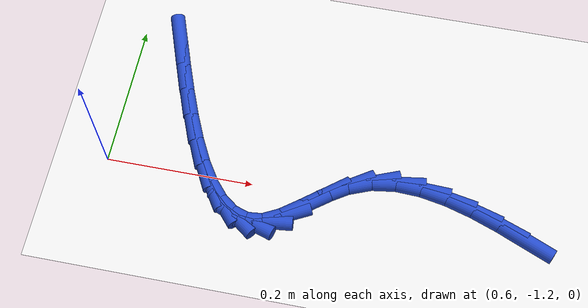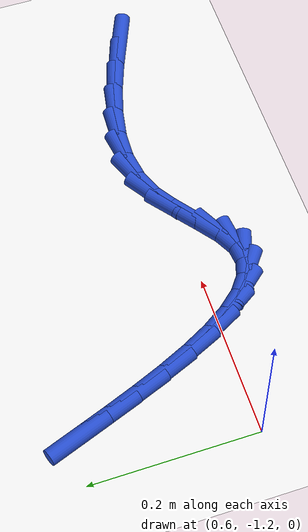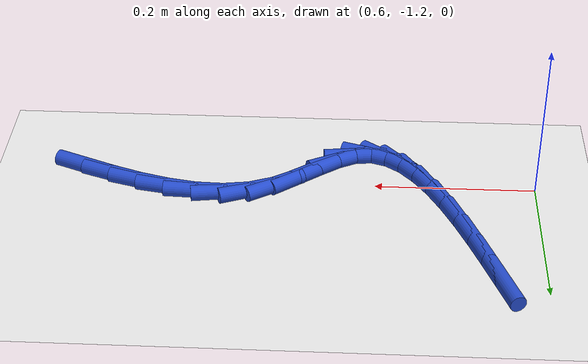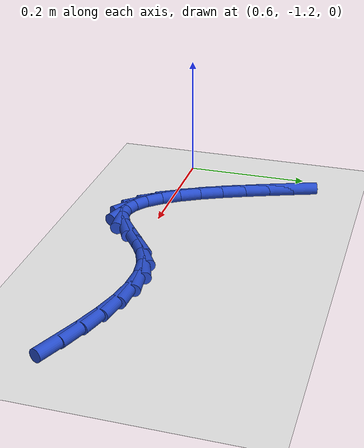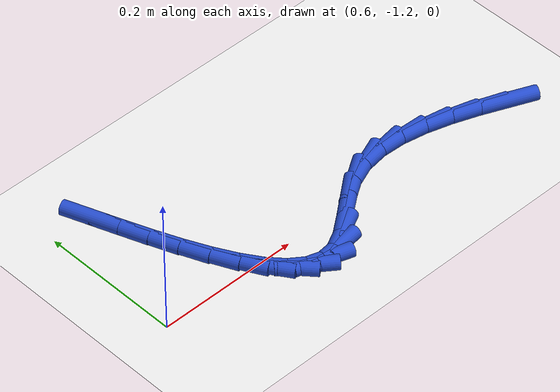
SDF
<sdf version="1.6">
 <world name="default">
  <model name="ground_plane">
   <static>1</static>
   <link name="link">
    <collision name="collision">
     <geometry><plane><normal>0 0 1</normal><size>100 100</size></plane></geometry>
     <surface><friction><ode><mu>100</mu><mu2>50</mu2></ode></friction></surface>
    </collision>
    <visual name="visual">
     <cast_shadows>0</cast_shadows>
     <geometry><plane><normal>0 0 1</normal><size>100 100</size></plane></geometry>
     <material>
      <script><uri>file://media/materials/scripts/gazebo.material</uri><name>Gazebo/WhiteGlow</name></script>
     </material>
    </visual>
   </link>
  </model>
  <model name="line">
   <link name="link_198">
    <pose>1.1672867434412315 -1.214195622889979 0.01 0 1.57 -0.3998779775159026</pose>
    <collision name="collision">
     <geometry><cylinder><radius>0.01</radius><length>0.08</length></cylinder></geometry>
    </collision>
    <visual name="visual">
     <material>
      <script><name>Gazebo/Blue</name><uri>file://media/materials/scripts/gazebo.material</uri></script>
     </material>
     <geometry><cylinder><radius>0.01</radius><length>0.08</length></cylinder></geometry>
    </visual>
   </link>
   <link name="link_199">
    <pose>1.1309426948871455 -1.1988348328783731 0.01 0 1.57 -0.3535939706742588</pose>
    <collision name="collision">
     <geometry><cylinder><radius>0.01</radius><length>0.08</length></cylinder></geometry>
    </collision>
    <visual name="visual">
     <material>
      <script><name>Gazebo/Blue</name><uri>file://media/materials/scripts/gazebo.material</uri></script>
     </material>
     <geometry><cylinder><radius>0.01</radius><length>0.08</length></cylinder></geometry>
    </visual>
   </link>
   <link name="link_200">
    <pose>1.0943776891417212 -1.1853384437313157 0.01 0 1.57 -0.2828614033960221</pose>
    <collision name="collision">
     <geometry><cylinder><radius>0.01</radius><length>0.08</length></cylinder></geometry>
    </collision>
    <visual name="visual">
     <material>
      <script><name>Gazebo/Blue</name><uri>file://media/materials/scripts/gazebo.material</uri></script>
     </material>
     <geometry><cylinder><radius>0.01</radius><length>0.08</length></cylinder></geometry>
    </visual>
   </link>
   <link name="link_201">
    <pose>1.0580887009479043 -1.1747908718219513 0.01 0 1.57 -0.1814034671086174</pose>
    <collision name="collision">
     <geometry><cylinder><radius>0.01</radius><length>0.08</length></cylinder></geometry>
    </collision>
    <visual name="visual">
     <material>
      <script><name>Gazebo/Blue</name><uri>file://media/materials/scripts/gazebo.material</uri></script>
     </material>
     <geometry><cylinder><radius>0.01</radius><length>0.08</length></cylinder></geometry>
    </visual>
   </link>
   <link name="link_202">
    <pose>1.0225727050486406 -1.1682765335234246 0.01 0 1.57 -0.04076135972783018</pose>
    <collision name="collision">
     <geometry><cylinder><radius>0.01</radius><length>0.08</length></cylinder></geometry>
    </collision>
    <visual name="visual">
     <material>
      <script><name>Gazebo/Blue</name><uri>file://media/materials/scripts/gazebo.material</uri></script>
     </material>
     <geometry><cylinder><radius>0.01</radius><length>0.08</length></cylinder></geometry>
    </visual>
   </link>
   <link name="link_203">
    <pose>0.9883266761868758 -1.1668798452088804 0.01 0 1.57 0.14688738304811272</pose>
    <collision name="collision">
     <geometry><cylinder><radius>0.01</radius><length>0.08</length></cylinder></geometry>
    </collision>
    <visual name="visual">
     <material>
      <script><name>Gazebo/Blue</name><uri>file://media/materials/scripts/gazebo.material</uri></script>
     </material>
     <geometry><cylinder><radius>0.01</radius><length>0.08</length></cylinder></geometry>
    </visual>
   </link>
   <link name="link_204">
    <pose>0.9558475891055547 -1.1716852232514634 0.01 0 1.57 0.37894538702692915</pose>
    <collision name="collision">
     <geometry><cylinder><radius>0.01</radius><length>0.08</length></cylinder></geometry>
    </collision>
    <visual name="visual">
     <material>
      <script><name>Gazebo/Blue</name><uri>file://media/materials/scripts/gazebo.material</uri></script>
     </material>
     <geometry><cylinder><radius>0.01</radius><length>0.08</length></cylinder></geometry>
    </visual>
   </link>
   <link name="link_205">
    <pose>0.9256235542659841 -1.1837201431678737 0.01 0 1.57 0.5766233068005471</pose>
    <collision name="collision">
     <geometry><cylinder><radius>0.01</radius><length>0.08</length></cylinder></geometry>
    </collision>
    <visual name="visual">
     <material>
      <script><name>Gazebo/Blue</name><uri>file://media/materials/scripts/gazebo.material</uri></script>
     </material>
     <geometry><cylinder><radius>0.01</radius><length>0.08</length></cylinder></geometry>
    </visual>
   </link>
   <link name="link_206">
    <pose>0.897800629972434 -1.201814864325712 0.01 0 1.57 0.6643433811011301</pose>
    <collision name="collision">
     <geometry><cylinder><radius>0.01</radius><length>0.08</length></cylinder></geometry>
    </collision>
    <visual name="visual">
     <material>
      <script><name>Gazebo/Blue</name><uri>file://media/materials/scripts/gazebo.material</uri></script>
     </material>
     <geometry><cylinder><radius>0.01</radius><length>0.08</length></cylinder></geometry>
    </visual>
   </link>
   <link name="link_207">
    <pose>0.8720820044491175 -1.2219548130113143 0.01 0 1.57 0.6441952971182416</pose>
    <collision name="collision">
     <geometry><cylinder><radius>0.01</radius><length>0.08</length></cylinder></geometry>
    </collision>
    <visual name="visual">
     <material>
      <script><name>Gazebo/Blue</name><uri>file://media/materials/scripts/gazebo.material</uri></script>
     </material>
     <geometry><cylinder><radius>0.01</radius><length>0.08</length></cylinder></geometry>
    </visual>
   </link>
   <link name="link_208">
    <pose>0.8481414153518462 -1.2399362359863066 0.01 0 1.57 0.47694094195615255</pose>
    <collision name="collision">
     <geometry><cylinder><radius>0.01</radius><length>0.08</length></cylinder></geometry>
    </collision>
    <visual name="visual">
     <material>
      <script><name>Gazebo/Blue</name><uri>file://media/materials/scripts/gazebo.material</uri></script>
     </material>
     <geometry><cylinder><radius>0.01</radius><length>0.08</length></cylinder></geometry>
    </visual>
   </link>
   <link name="link_209">
    <pose>0.8256526705116467 -1.2515568190800779 0.01 0 1.57 0.10683987901465693</pose>
    <collision name="collision">
     <geometry><cylinder><radius>0.01</radius><length>0.08</length></cylinder></geometry>
    </collision>
    <visual name="visual">
     <material>
      <script><name>Gazebo/Blue</name><uri>file://media/materials/scripts/gazebo.material</uri></script>
     </material>
     <geometry><cylinder><radius>0.01</radius><length>0.08</length></cylinder></geometry>
    </visual>
   </link>
   <link name="link_210">
    <pose>0.8043494265881377 -1.2538415549430872 0.01 0 1.57 -0.3139006632872088</pose>
    <collision name="collision">
     <geometry><cylinder><radius>0.01</radius><length>0.08</length></cylinder></geometry>
    </collision>
    <visual name="visual">
     <material>
      <script><name>Gazebo/Blue</name><uri>file://media/materials/scripts/gazebo.material</uri></script>
     </material>
     <geometry><cylinder><radius>0.01</radius><length>0.08</length></cylinder></geometry>
    </visual>
   </link>
   <link name="link_211">
    <pose>0.7841342397605419 -1.247279021685341 0.01 0 1.57 -0.6407730409993233</pose>
    <collision name="collision">
     <geometry><cylinder><radius>0.01</radius><length>0.08</length></cylinder></geometry>
    </collision>
    <visual name="visual">
     <material>
      <script><name>Gazebo/Blue</name><uri>file://media/materials/scripts/gazebo.material</uri></script>
     </material>
     <geometry><cylinder><radius>0.01</radius><length>0.08</length></cylinder></geometry>
    </visual>
   </link>
   <link name="link_212">
    <pose>0.7649392483511954 -1.2329644319472024 0.01 0 1.57 -0.8548727849144232</pose>
    <collision name="collision">
     <geometry><cylinder><radius>0.01</radius><length>0.08</length></cylinder></geometry>
    </collision>
    <visual name="visual">
     <material>
      <script><name>Gazebo/Blue</name><uri>file://media/materials/scripts/gazebo.material</uri></script>
     </material>
     <geometry><cylinder><radius>0.01</radius><length>0.08</length></cylinder></geometry>
    </visual>
   </link>
   <link name="link_213">
    <pose>0.7466965906824352 -1.2119929983690338 0.01 0 1.57 -0.9914675015425416</pose>
    <collision name="collision">
     <geometry><cylinder><radius>0.01</radius><length>0.08</length></cylinder></geometry>
    </collision>
    <visual name="visual">
     <material>
      <script><name>Gazebo/Blue</name><uri>file://media/materials/scripts/gazebo.material</uri></script>
     </material>
     <geometry><cylinder><radius>0.01</radius><length>0.08</length></cylinder></geometry>
    </visual>
   </link>
   <link name="link_214">
    <pose>0.7293384050765985 -1.1854599335911995 0.01 0 1.57 -1.08062511088094</pose>
    <collision name="collision">
     <geometry><cylinder><radius>0.01</radius><length>0.08</length></cylinder></geometry>
    </collision>
    <visual name="visual">
     <material>
      <script><name>Gazebo/Blue</name><uri>file://media/materials/scripts/gazebo.material</uri></script>
     </material>
     <geometry><cylinder><radius>0.01</radius><length>0.08</length></cylinder></geometry>
    </visual>
   </link>
   <link name="link_215">
    <pose>0.712796829856022 -1.1544604502540623 0.01 0 1.57 -1.1400824780726417</pose>
    <collision name="collision">
     <geometry><cylinder><radius>0.01</radius><length>0.08</length></cylinder></geometry>
    </collision>
    <visual name="visual">
     <material>
      <script><name>Gazebo/Blue</name><uri>file://media/materials/scripts/gazebo.material</uri></script>
     </material>
     <geometry><cylinder><radius>0.01</radius><length>0.08</length></cylinder></geometry>
    </visual>
   </link>
   <link name="link_216">
    <pose>0.6970040033430416 -1.1200897609979852 0.01 0 1.57 -1.179673084941714</pose>
    <collision name="collision">
     <geometry><cylinder><radius>0.01</radius><length>0.08</length></cylinder></geometry>
    </collision>
    <visual name="visual">
     <material>
      <script><name>Gazebo/Blue</name><uri>file://media/materials/scripts/gazebo.material</uri></script>
     </material>
     <geometry><cylinder><radius>0.01</radius><length>0.08</length></cylinder></geometry>
    </visual>
   </link>
   <link name="link_217">
    <pose>0.6818920638599946 -1.0834430784633315 0.01 0 1.57 -1.2047769990235426</pose>
    <collision name="collision">
     <geometry><cylinder><radius>0.01</radius><length>0.08</length></cylinder></geometry>
    </collision>
    <visual name="visual">
     <material>
      <script><name>Gazebo/Blue</name><uri>file://media/materials/scripts/gazebo.material</uri></script>
     </material>
     <geometry><cylinder><radius>0.01</radius><length>0.08</length></cylinder></geometry>
    </visual>
   </link>
   <link name="link_218">
    <pose>0.6673931497292173 -1.0456156152904643 0.01 0 1.57 -1.218135953208379</pose>
    <collision name="collision">
     <geometry><cylinder><radius>0.01</radius><length>0.08</length></cylinder></geometry>
    </collision>
    <visual name="visual">
     <material>
      <script><name>Gazebo/Blue</name><uri>file://media/materials/scripts/gazebo.material</uri></script>
     </material>
     <geometry><cylinder><radius>0.01</radius><length>0.08</length></cylinder></geometry>
    </visual>
   </link>
   <link name="link_219">
    <pose>0.6534393992730464 -1.007702584119747 0.01 0 1.57 -1.2206609738849723</pose>
    <collision name="collision">
     <geometry><cylinder><radius>0.01</radius><length>0.08</length></cylinder></geometry>
    </collision>
    <visual name="visual">
     <material>
      <script><name>Gazebo/Blue</name><uri>file://media/materials/scripts/gazebo.material</uri></script>
     </material>
     <geometry><cylinder><radius>0.01</radius><length>0.08</length></cylinder></geometry>
    </visual>
   </link>
  </model>
 </world>
</sdf>
